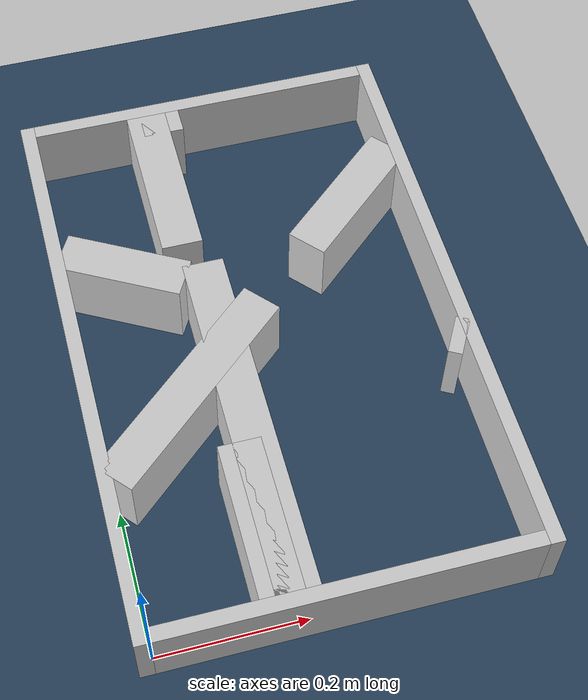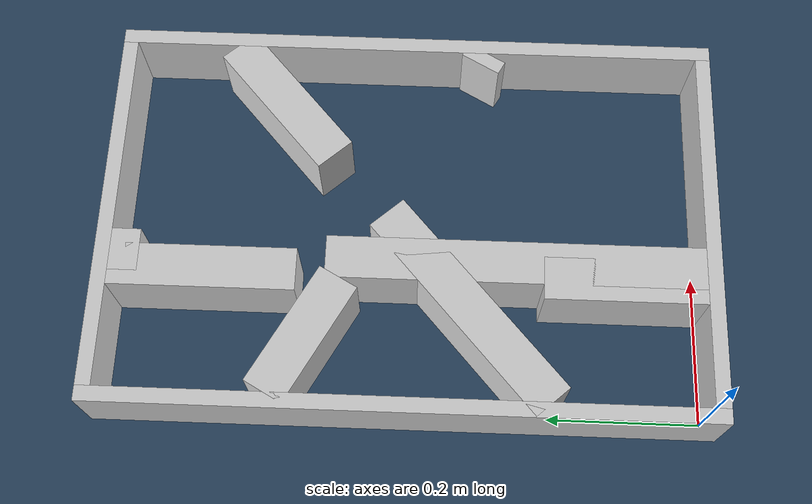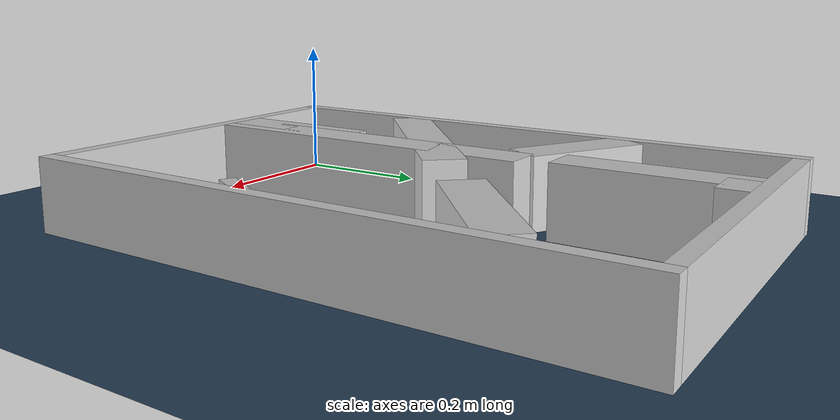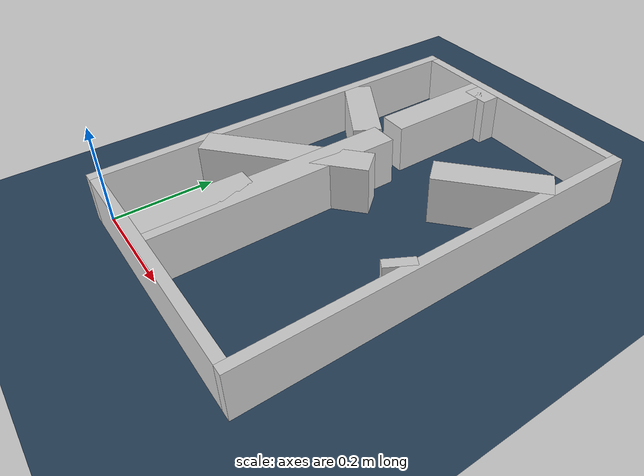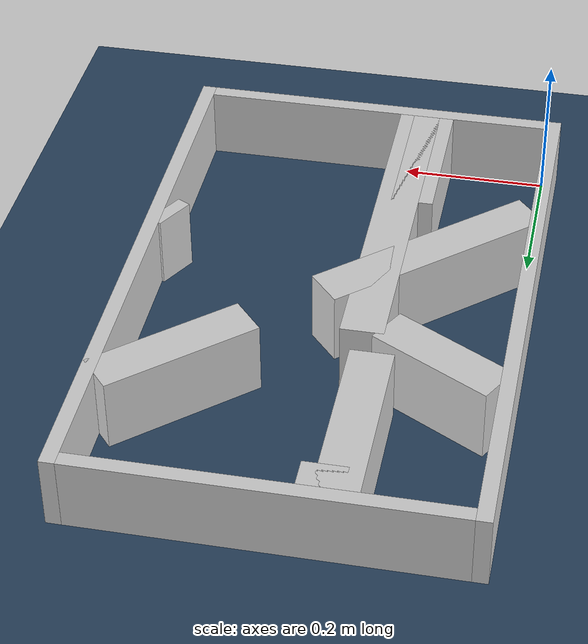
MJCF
<?xml version="1.0" ?>
<mujoco model="generated_real_template">
  <compiler angle="degree"/>
  <option timestep="0.002" integrator="implicitfast" iterations="100" cone="elliptic"/>
  <default>
    <geom density="1"/>
  </default>
  <asset>
    <texture builtin="gradient" height="3072" rgb1="0.3 0.5 0.7" rgb2="0 0 0" type="skybox" width="512"/>
    <texture builtin="checker" height="300" mark="edge" markrgb="0.8 0.8 0.8" name="groundplane" rgb1="0.2 0.3 0.4" rgb2="0.1 0.2 0.3" type="2d" width="300"/>
    <material name="groundplane" reflectance="0.2" texrepeat="5 5" texture="groundplane" texuniform="true"/>
  </asset>
  <worldbody>
    <light dir="0 0 -1" directional="true" pos="0 0 1.5"/>
    <geom name="floor" type="plane" condim="4" friction="0.5 0.005 0.001" material="groundplane" size="0 0 0.05"/>
    <body name="walls">
      <geom name="wall_boundary_left" type="box" condim="4" friction="1.0 0.005 0.0001" rgba="0.8 0.8 0.8 1" pos="-0.010000 0.387500 0.050000" euler="0 0 0.000000" size="0.010000 0.407500 0.050000"/>
      <geom name="wall_boundary_right" type="box" condim="4" friction="1.0 0.005 0.0001" rgba="0.8 0.8 0.8 1" pos="0.500000 0.387500 0.050000" euler="0 0 0.000000" size="0.010000 0.407500 0.050000"/>
      <geom name="wall_boundary_bottom" type="box" condim="4" friction="1.0 0.005 0.0001" rgba="0.8 0.8 0.8 1" pos="0.245000 -0.010000 0.050000" euler="0 0 0.000000" size="0.245000 0.010000 0.050000"/>
      <geom name="wall_boundary_top" type="box" condim="4" friction="1.0 0.005 0.0001" rgba="0.8 0.8 0.8 1" pos="0.245000 0.785000 0.050000" euler="0 0 0.000000" size="0.245000 0.010000 0.050000"/>
      <geom name="wall_inner_1_1" type="box" condim="4" friction="1.0 0.005 0.0001" rgba="0.8 0.8 0.8 1" pos="0.162468 0.105409 0.050000" euler="0 0 90.000000" size="0.105409 0.028500 0.050000"/>
      <geom name="wall_inner_1_2" type="box" condim="4" friction="1.0 0.005 0.0001" rgba="0.8 0.8 0.8 1" pos="0.162468 0.652991 0.050000" euler="0 0 90.000000" size="0.122009 0.028500 0.050000"/>
      <geom name="wall_inner_2_1" type="box" condim="4" friction="1.0 0.005 0.0001" rgba="0.8 0.8 0.8 1" pos="0.077030 0.518395 0.050000" euler="0 0 -29.122284" size="0.088177 0.028500 0.050000"/>
      <geom name="wall_inner_2_2" type="box" condim="4" friction="1.0 0.005 0.0001" rgba="0.8 0.8 0.8 1" pos="0.481552 0.293035 0.050000" euler="0 0 -29.122284" size="0.009670 0.028500 0.050000"/>
      <geom name="wall_inner_3_1" type="box" condim="4" friction="1.0 0.005 0.0001" rgba="0.8 0.8 0.8 1" pos="0.122982 0.308596 0.050000" euler="0 0 41.494902" size="0.164191 0.028500 0.050000"/>
      <geom name="wall_inner_3_2" type="box" condim="4" friction="1.0 0.005 0.0001" rgba="0.8 0.8 0.8 1" pos="0.408976 0.561576 0.050000" euler="0 0 41.494902" size="0.108175 0.028500 0.050000"/>
      <geom name="wall_inner_4_1" type="box" condim="4" friction="1.0 0.005 0.0001" rgba="0.8 0.8 0.8 1" pos="0.182015 0.247097 0.050000" euler="0 0 90.000000" size="0.247097 0.028500 0.050000"/>
      <geom name="wall_inner_4_2" type="box" condim="4" friction="1.0 0.005 0.0001" rgba="0.8 0.8 0.8 1" pos="0.182015 0.755869 0.050000" euler="0 0 90.000000" size="0.019131 0.028500 0.050000"/>
    </body>
  </worldbody>
</mujoco>
